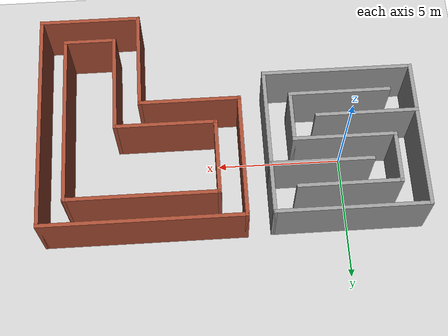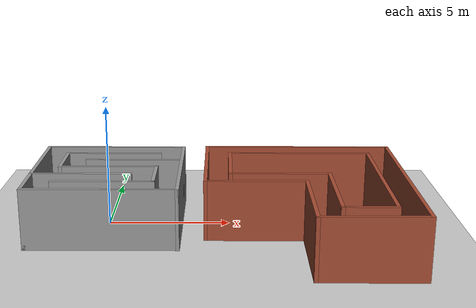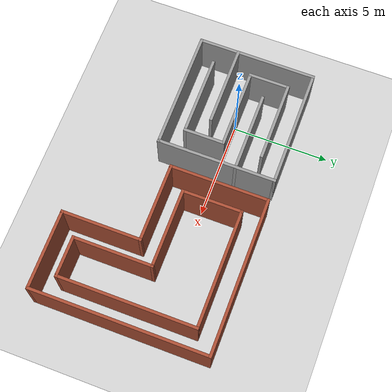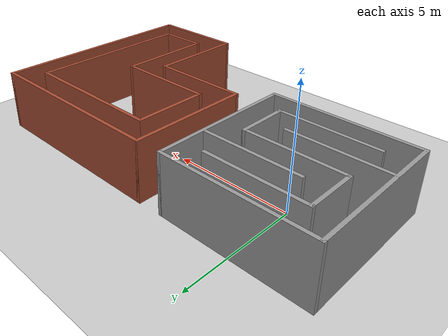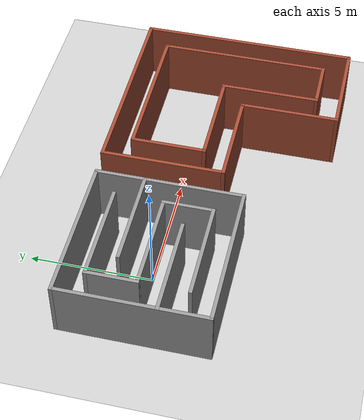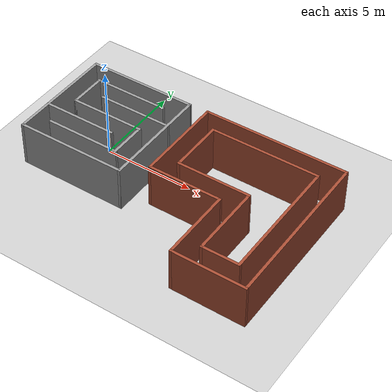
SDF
<sdf version="1.4">
 <world name="default">
  <light name="sun" type="directional">
   <pose>0 0 10 0 -0 0</pose>
   <diffuse>0.8 0.8 0.8 1</diffuse>
   <specular>0.2 0.2 0.2 1</specular>
   <attenuation>
    <range>1000</range>
    <constant>0.9</constant>
    <linear>0.01</linear>
    <quadratic>0.001</quadratic>
   </attenuation>
   <direction>-0.5 0.1 -0.9</direction>
   <spot><inner_angle>0</inner_angle><outer_angle>0</outer_angle><falloff>0</falloff></spot>
  </light>
  <model name="ground_plane">
   <static>1</static>
   <link name="link">
    <collision name="collision">
     <geometry><plane><normal>0 0 1</normal><size>100 100</size></plane></geometry>
     <surface>
      <contact><collide_bitmask>65535</collide_bitmask></contact>
      <friction><ode><mu>100</mu><mu2>50</mu2></ode></friction>
     </surface>
    </collision>
    <visual name="visual">
     <cast_shadows>0</cast_shadows>
     <geometry><plane><normal>0 0 1</normal><size>100 100</size></plane></geometry>
     <material>
      <script><uri>file://media/materials/scripts/gazebo.material</uri><name>Gazebo/Grey</name></script>
     </material>
    </visual>
   </link>
  </model>
  <gravity>0 0 -9.8</gravity>
  <magnetic_field>6e-06 2.3e-05 -4.2e-05</magnetic_field>
  <atmosphere type="adiabatic"/>
  <physics type="ode">
   <max_step_size>0.001</max_step_size>
   <real_time_factor>1</real_time_factor>
   <real_time_update_rate>1000</real_time_update_rate>
  </physics>
  <scene><ambient>0.4 0.4 0.4 1</ambient><background>0.7 0.7 0.7 1</background><shadows>1</shadows></scene>
  <spherical_coordinates>
   <surface_model>EARTH_WGS84</surface_model>
   <latitude_deg>0</latitude_deg>
   <longitude_deg>0</longitude_deg>
   <elevation>0</elevation>
   <heading_deg>0</heading_deg>
  </spherical_coordinates>
  <model name="maze_0_building">
   <link name="Wall_11">
    <collision name="Wall_11_Collision">
     <geometry><box><size>0.15 0.15 2.5</size></box></geometry>
     <pose>0 0 1.25 0 -0 0</pose>
    </collision>
    <visual name="Wall_11_Visual">
     <pose>0 0 1.25 0 -0 0</pose>
     <geometry><box><size>0.15 0.15 2.5</size></box></geometry>
     <material>
      <script><uri>file://media/materials/scripts/gazebo.material</uri><name>Gazebo/Grey</name></script>
      <ambient>1 1 1 1</ambient>
     </material>
     <meta><layer>0</layer></meta>
    </visual>
    <pose>3 3 0 0 -0 0</pose>
   </link>
   <link name="Wall_12">
    <collision name="Wall_12_Collision">
     <geometry><box><size>6.15 0.15 2.5</size></box></geometry>
     <pose>0 0 1.25 0 -0 0</pose>
    </collision>
    <visual name="Wall_12_Visual">
     <pose>0 0 1.25 0 -0 0</pose>
     <geometry><box><size>6.15 0.15 2.5</size></box></geometry>
     <material>
      <script><uri>file://media/materials/scripts/gazebo.material</uri><name>Gazebo/Grey</name></script>
      <ambient>1 1 1 1</ambient>
     </material>
     <meta><layer>0</layer></meta>
    </visual>
    <pose>0 3 0 0 -0 3.14159</pose>
   </link>
   <link name="Wall_13">
    <collision name="Wall_13_Collision">
     <geometry><box><size>6.15 0.15 2.5</size></box></geometry>
     <pose>0 0 1.25 0 -0 0</pose>
    </collision>
    <visual name="Wall_13_Visual">
     <pose>0 0 1.25 0 -0 0</pose>
     <geometry><box><size>6.15 0.15 2.5</size></box></geometry>
     <material>
      <script><uri>file://media/materials/scripts/gazebo.material</uri><name>Gazebo/Grey</name></script>
      <ambient>1 1 1 1</ambient>
     </material>
     <meta><layer>0</layer></meta>
    </visual>
    <pose>-3 0 0 0 -0 -1.5708</pose>
   </link>
   <link name="Wall_14">
    <collision name="Wall_14_Collision">
     <geometry><box><size>6.15 0.15 2.5</size></box></geometry>
     <pose>0 0 1.25 0 -0 0</pose>
    </collision>
    <visual name="Wall_14_Visual">
     <pose>0 0 1.25 0 -0 0</pose>
     <geometry><box><size>6.15 0.15 2.5</size></box></geometry>
     <material>
      <script><uri>file://media/materials/scripts/gazebo.material</uri><name>Gazebo/Grey</name></script>
      <ambient>1 1 1 1</ambient>
     </material>
     <meta><layer>0</layer></meta>
    </visual>
    <pose>0 -3 0 0 -0 0</pose>
   </link>
   <link name="Wall_15">
    <collision name="Wall_15_Collision">
     <geometry><box><size>6.15 0.15 2.5</size></box></geometry>
     <pose>0 0 1.25 0 -0 0</pose>
    </collision>
    <visual name="Wall_15_Visual">
     <pose>0 0 1.25 0 -0 0</pose>
     <geometry><box><size>6.15 0.15 2.5</size></box></geometry>
     <material>
      <script><uri>file://media/materials/scripts/gazebo.material</uri><name>Gazebo/Grey</name></script>
      <ambient>1 1 1 1</ambient>
     </material>
     <meta><layer>0</layer></meta>
    </visual>
    <pose>3 0 0 0 -0 1.5708</pose>
   </link>
   <link name="Wall_17">
    <collision name="Wall_17_Collision">
     <geometry><box><size>4.15 0.15 2.5</size></box></geometry>
     <pose>0 0 1.25 0 -0 0</pose>
    </collision>
    <visual name="Wall_17_Visual">
     <pose>0 0 1.25 0 -0 0</pose>
     <geometry><box><size>4.15 0.15 2.5</size></box></geometry>
     <material>
      <script><uri>file://media/materials/scripts/gazebo.material</uri><name>Gazebo/Grey</name></script>
      <ambient>1 1 1 1</ambient>
     </material>
     <meta><layer>0</layer></meta>
    </visual>
    <pose>-1 -1 0 0 -0 0</pose>
   </link>
   <link name="Wall_19">
    <collision name="Wall_19_Collision">
     <geometry><box><size>4.15 0.15 2.5</size></box></geometry>
     <pose>0 0 1.25 0 -0 0</pose>
    </collision>
    <visual name="Wall_19_Visual">
     <pose>0 0 1.25 0 -0 0</pose>
     <geometry><box><size>4.15 0.15 2.5</size></box></geometry>
     <material>
      <script><uri>file://media/materials/scripts/gazebo.material</uri><name>Gazebo/Grey</name></script>
      <ambient>1 1 1 1</ambient>
     </material>
     <meta><layer>0</layer></meta>
    </visual>
    <pose>1 1 0 0 -0 0</pose>
   </link>
   <link name="Wall_4">
    <collision name="Wall_4_Collision">
     <geometry><box><size>4.15 0.15 2.5</size></box></geometry>
     <pose>0 0 1.25 0 -0 0</pose>
    </collision>
    <visual name="Wall_4_Visual">
     <pose>0 0 1.25 0 -0 0</pose>
     <geometry><box><size>4.15 0.15 2.5</size></box></geometry>
     <material>
      <script><uri>file://media/materials/scripts/gazebo.material</uri><name>Gazebo/Grey</name></script>
      <ambient>1 1 1 1</ambient>
     </material>
     <meta><layer>0</layer></meta>
    </visual>
    <pose>0 2 0 0 -0 3.14159</pose>
   </link>
   <link name="Wall_5">
    <collision name="Wall_5_Collision">
     <geometry><box><size>2.15 0.15 2.5</size></box></geometry>
     <pose>0 0 1.25 0 -0 0</pose>
    </collision>
    <visual name="Wall_5_Visual">
     <pose>0 0 1.25 0 -0 0</pose>
     <geometry><box><size>2.15 0.15 2.5</size></box></geometry>
     <material>
      <script><uri>file://media/materials/scripts/gazebo.material</uri><name>Gazebo/Grey</name></script>
      <ambient>1 1 1 1</ambient>
     </material>
     <meta><layer>0</layer></meta>
    </visual>
    <pose>-2 1 0 0 -0 -1.5708</pose>
   </link>
   <link name="Wall_6">
    <collision name="Wall_6_Collision">
     <geometry><box><size>4.15 0.15 2.5</size></box></geometry>
     <pose>0 0 1.25 0 -0 0</pose>
    </collision>
    <visual name="Wall_6_Visual">
     <pose>0 0 1.25 0 -0 0</pose>
     <geometry><box><size>4.15 0.15 2.5</size></box></geometry>
     <material>
      <script><uri>file://media/materials/scripts/gazebo.material</uri><name>Gazebo/Grey</name></script>
      <ambient>1 1 1 1</ambient>
     </material>
     <meta><layer>0</layer></meta>
    </visual>
   </link>
   <link name="Wall_7">
    <collision name="Wall_7_Collision">
     <geometry><box><size>2.15 0.15 2.5</size></box></geometry>
     <pose>0 0 1.25 0 -0 0</pose>
    </collision>
    <visual name="Wall_7_Visual">
     <pose>0 0 1.25 0 -0 0</pose>
     <geometry><box><size>2.15 0.15 2.5</size></box></geometry>
     <material>
      <script><uri>file://media/materials/scripts/gazebo.material</uri><name>Gazebo/Grey</name></script>
      <ambient>1 1 1 1</ambient>
     </material>
     <meta><layer>0</layer></meta>
    </visual>
    <pose>2 -1 0 0 -0 -1.5708</pose>
   </link>
   <link name="Wall_8">
    <collision name="Wall_8_Collision">
     <geometry><box><size>4.15 0.15 2.5</size></box></geometry>
     <pose>0 0 1.25 0 -0 0</pose>
    </collision>
    <visual name="Wall_8_Visual">
     <pose>0 0 1.25 0 -0 0</pose>
     <geometry><box><size>4.15 0.15 2.5</size></box></geometry>
     <material>
      <script><uri>file://media/materials/scripts/gazebo.material</uri><name>Gazebo/Grey</name></script>
      <ambient>1 1 1 1</ambient>
     </material>
     <meta><layer>0</layer></meta>
    </visual>
    <pose>0 -2 0 0 -0 3.14159</pose>
   </link>
   <static>1</static>
  </model>
  <model name="maze_stage1">
   <pose>8.06122 -1.44888 0 0 -0 0</pose>
   <link name="Wall_0">
    <collision name="Wall_0_Collision">
     <geometry><box><size>3.15 0.15 2.5</size></box></geometry>
     <pose>0 0 1.25 0 -0 0</pose>
    </collision>
    <visual name="Wall_0_Visual">
     <pose>0 0 1.25 0 -0 0</pose>
     <geometry><box><size>3.15 0.15 2.5</size></box></geometry>
     <material>
      <script><uri>file://media/materials/scripts/gazebo.material</uri><name>Gazebo/Bricks</name></script>
      <ambient>1 1 1 1</ambient>
     </material>
     <meta><layer>0</layer></meta>
    </visual>
    <pose>-3 2 0 0 -0 1.5708</pose>
   </link>
   <link name="Wall_1">
    <collision name="Wall_1_Collision">
     <geometry><box><size>6.15 0.15 2.5</size></box></geometry>
     <pose>0 0 1.25 0 -0 0</pose>
    </collision>
    <visual name="Wall_1_Visual">
     <pose>0 0 1.25 0 -0 0</pose>
     <geometry><box><size>6.15 0.15 2.5</size></box></geometry>
     <material>
      <script><uri>file://media/materials/scripts/gazebo.material</uri><name>Gazebo/Bricks</name></script>
      <ambient>1 1 1 1</ambient>
     </material>
     <meta><layer>0</layer></meta>
    </visual>
    <pose>-0 3.5 0 0 -0 0</pose>
   </link>
   <link name="Wall_10">
    <collision name="Wall_10_Collision">
     <geometry><box><size>4.15 0.15 2.5</size></box></geometry>
     <pose>0 0 1.25 0 -0 0</pose>
    </collision>
    <visual name="Wall_10_Visual">
     <pose>0 0 1.25 0 -0 0</pose>
     <geometry><box><size>4.15 0.15 2.5</size></box></geometry>
     <material>
      <script><uri>file://media/materials/scripts/gazebo.material</uri><name>Gazebo/Bricks</name></script>
      <ambient>1 1 1 1</ambient>
     </material>
     <meta><layer>0</layer></meta>
    </visual>
    <pose>2 -4.5 0 0 -0 3.14159</pose>
   </link>
   <link name="Wall_11">
    <collision name="Wall_11_Collision">
     <geometry><box><size>4.15 0.15 2.5</size></box></geometry>
     <pose>0 0 1.25 0 -0 0</pose>
    </collision>
    <visual name="Wall_11_Visual">
     <pose>0 0 1.25 0 -0 0</pose>
     <geometry><box><size>4.15 0.15 2.5</size></box></geometry>
     <material>
      <script><uri>file://media/materials/scripts/gazebo.material</uri><name>Gazebo/Bricks</name></script>
      <ambient>1 1 1 1</ambient>
     </material>
     <meta><layer>0</layer></meta>
    </visual>
    <pose>-0 -2.5 0 0 -0 1.5708</pose>
   </link>
   <link name="Wall_12">
    <collision name="Wall_12_Collision">
     <geometry><box><size>4.15 0.15 2.5</size></box></geometry>
     <pose>0 0 1.25 0 -0 0</pose>
    </collision>
    <visual name="Wall_12_Visual">
     <pose>0 0 1.25 0 -0 0</pose>
     <geometry><box><size>4.15 0.15 2.5</size></box></geometry>
     <material>
      <script><uri>file://media/materials/scripts/gazebo.material</uri><name>Gazebo/Bricks</name></script>
      <ambient>1 1 1 1</ambient>
     </material>
     <meta><layer>0</layer></meta>
    </visual>
    <pose>-2 -0.5 0 0 -0 3.14159</pose>
   </link>
   <link name="Wall_2">
    <collision name="Wall_2_Collision">
     <geometry><box><size>7.15 0.15 2.5</size></box></geometry>
     <pose>0 0 1.25 0 -0 0</pose>
    </collision>
    <visual name="Wall_2_Visual">
     <pose>0 0 1.25 0 -0 0</pose>
     <geometry><box><size>7.15 0.15 2.5</size></box></geometry>
     <material>
      <script><uri>file://media/materials/scripts/gazebo.material</uri><name>Gazebo/Bricks</name></script>
      <ambient>1 1 1 1</ambient>
     </material>
     <meta><layer>0</layer></meta>
    </visual>
    <pose>3 0 0 0 -0 -1.5708</pose>
   </link>
   <link name="Wall_3">
    <collision name="Wall_3_Collision">
     <geometry><box><size>2.15 0.15 2.5</size></box></geometry>
     <pose>0 0 1.25 0 -0 0</pose>
    </collision>
    <visual name="Wall_3_Visual">
     <pose>0 0 1.25 0 -0 0</pose>
     <geometry><box><size>2.15 0.15 2.5</size></box></geometry>
     <material>
      <script><uri>file://media/materials/scripts/gazebo.material</uri><name>Gazebo/Bricks</name></script>
      <ambient>1 1 1 1</ambient>
     </material>
     <meta><layer>0</layer></meta>
    </visual>
    <pose>2 -3.5 0 0 -0 3.14159</pose>
   </link>
   <link name="Wall_4">
    <collision name="Wall_4_Collision">
     <geometry><box><size>4.15 0.15 2.5</size></box></geometry>
     <pose>0 0 1.25 0 -0 0</pose>
    </collision>
    <visual name="Wall_4_Visual">
     <pose>0 0 1.25 0 -0 0</pose>
     <geometry><box><size>4.15 0.15 2.5</size></box></geometry>
     <material>
      <script><uri>file://media/materials/scripts/gazebo.material</uri><name>Gazebo/Bricks</name></script>
      <ambient>1 1 1 1</ambient>
     </material>
     <meta><layer>0</layer></meta>
    </visual>
    <pose>1 -1.5 0 0 -0 1.5708</pose>
   </link>
   <link name="Wall_5">
    <collision name="Wall_5_Collision">
     <geometry><box><size>4.15 0.15 2.5</size></box></geometry>
     <pose>0 0 1.25 0 -0 0</pose>
    </collision>
    <visual name="Wall_5_Visual">
     <pose>0 0 1.25 0 -0 0</pose>
     <geometry><box><size>4.15 0.15 2.5</size></box></geometry>
     <material>
      <script><uri>file://media/materials/scripts/gazebo.material</uri><name>Gazebo/Bricks</name></script>
      <ambient>1 1 1 1</ambient>
     </material>
     <meta><layer>0</layer></meta>
    </visual>
    <pose>-1 0.5 0 0 -0 3.14159</pose>
   </link>
   <link name="Wall_7">
    <collision name="Wall_7_Collision">
     <geometry><box><size>5.15 0.15 2.5</size></box></geometry>
     <pose>0 0 1.25 0 -0 0</pose>
    </collision>
    <visual name="Wall_7_Visual">
     <pose>0 0 1.25 0 -0 0</pose>
     <geometry><box><size>5.15 0.15 2.5</size></box></geometry>
     <material>
      <script><uri>file://media/materials/scripts/gazebo.material</uri><name>Gazebo/Bricks</name></script>
      <ambient>1 1 1 1</ambient>
     </material>
     <meta><layer>0</layer></meta>
    </visual>
    <pose>-4 2 0 0 -0 1.5708</pose>
   </link>
   <link name="Wall_8">
    <collision name="Wall_8_Collision">
     <geometry><box><size>8.15 0.15 2.5</size></box></geometry>
     <pose>0 0 1.25 0 -0 0</pose>
    </collision>
    <visual name="Wall_8_Visual">
     <pose>0 0 1.25 0 -0 0</pose>
     <geometry><box><size>8.15 0.15 2.5</size></box></geometry>
     <material>
      <script><uri>file://media/materials/scripts/gazebo.material</uri><name>Gazebo/Bricks</name></script>
      <ambient>1 1 1 1</ambient>
     </material>
     <meta><layer>0</layer></meta>
    </visual>
    <pose>-0 4.5 0 0 -0 0</pose>
   </link>
   <link name="Wall_9">
    <collision name="Wall_9_Collision">
     <geometry><box><size>9.15 0.15 2.5</size></box></geometry>
     <pose>0 0 1.25 0 -0 0</pose>
    </collision>
    <visual name="Wall_9_Visual">
     <pose>0 0 1.25 0 -0 0</pose>
     <geometry><box><size>9.15 0.15 2.5</size></box></geometry>
     <material>
      <script><uri>file://media/materials/scripts/gazebo.material</uri><name>Gazebo/Bricks</name></script>
      <ambient>1 1 1 1</ambient>
     </material>
     <meta><layer>0</layer></meta>
    </visual>
    <pose>4 0 0 0 -0 -1.5708</pose>
   </link>
   <static>1</static>
  </model>
 </world>
</sdf>
